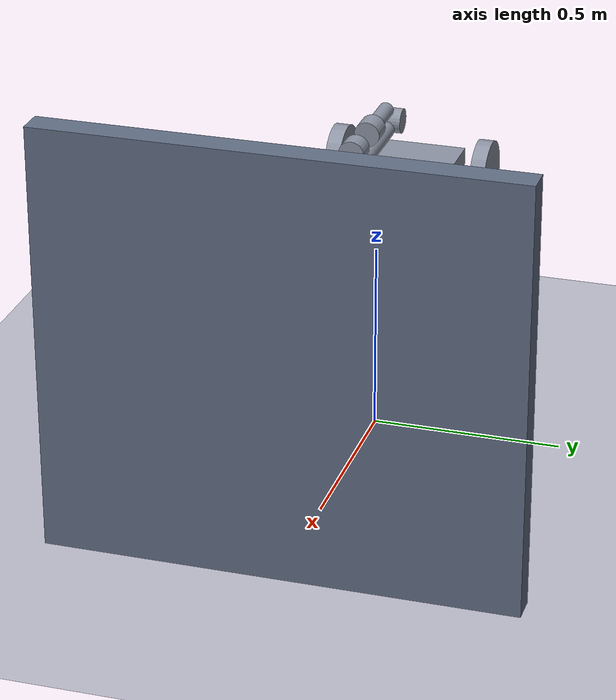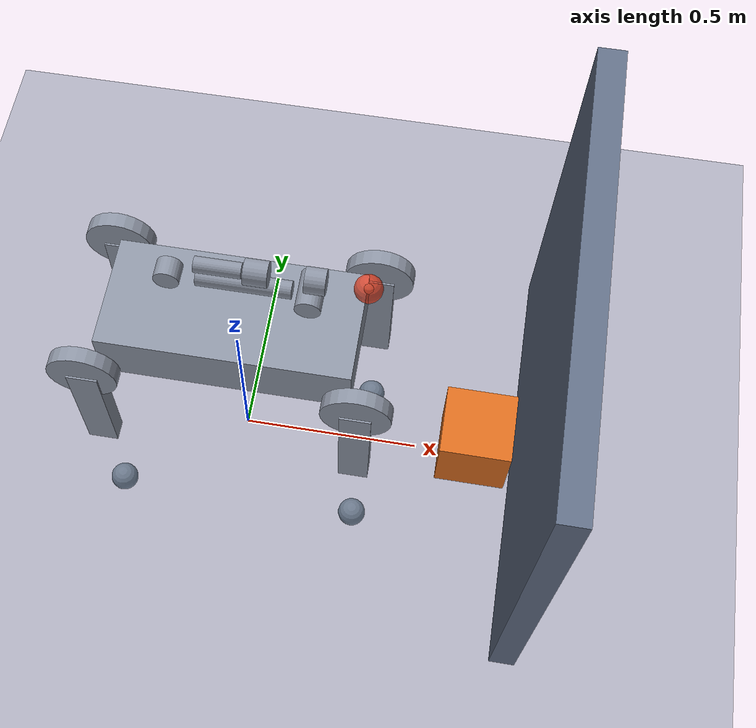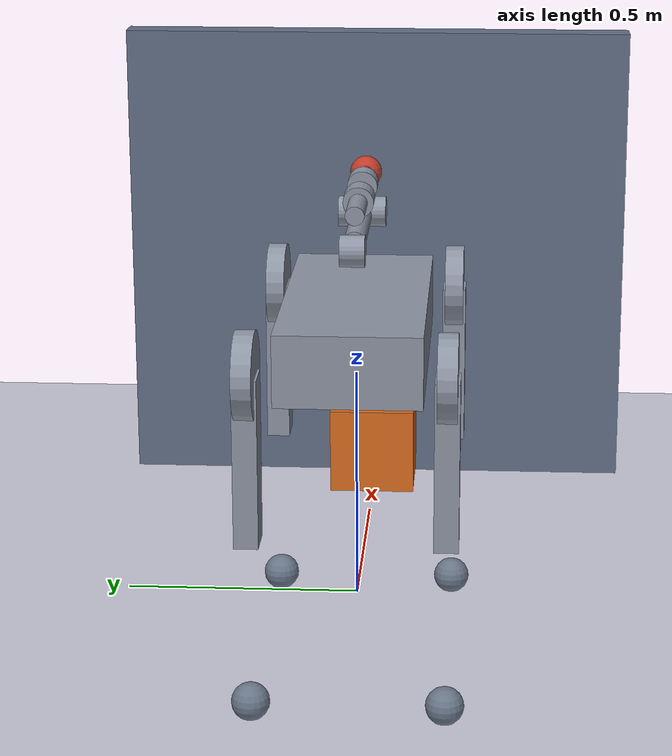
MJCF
<?xml version='1.0' encoding='utf-8'?>
<mujoco model="b1_z1_sim2sim">
  <compiler angle="radian" autolimits="true" balanceinertia="true" />
  <option timestep="0.005" gravity="0 0 -9.81" integrator="implicitfast" solver="Newton" />
  <visual>
    <headlight diffuse="0.7 0.7 0.7" ambient="0.35 0.35 0.35" specular="0.1 0.1 0.1" />
    <rgba haze="0.15 0.25 0.35 1" />
    <global azimuth="-130" elevation="-20" />
    <map znear="0.01" zfar="100" />
  </visual>
  <default>
    <joint damping="0" armature="0" frictionloss="0" />
    <geom margin="0.001" />
  </default>
  <asset>
    <texture type="skybox" builtin="gradient" rgb1="0.3 0.5 0.7" rgb2="0.02 0.02 0.03" width="512" height="3072" />
    <texture type="2d" name="groundplane_texture" builtin="checker" mark="edge" rgb1="0.2 0.3 0.4" rgb2="0.1 0.2 0.3" markrgb="0.8 0.8 0.8" width="300" height="300" />
    <material name="groundplane_material" texture="groundplane_texture" texuniform="true" texrepeat="5 5" reflectance="0.2" />
  </asset>
  <worldbody>
    <light pos="0 0 3" dir="0 0 -1" directional="true" diffuse="0.8 0.8 0.8" />
    <geom name="floor" type="plane" size="8 8 0.1" material="groundplane_material" friction="0.9 0.02 0.01" condim="3" />
    <geom name="contact_wall" type="box" pos="0.82 0 0.55" size="0.035 0.60 0.55" rgba="0.38 0.43 0.52 1" friction="0.8 0.02 0.01" />
    <body name="manipulation_block" pos="0.67 0 0.12">
      <freejoint name="manipulation_block_free" />
      <geom name="manipulation_block_geom" type="box" size="0.10 0.10 0.10" mass="1.0" rgba="0.85 0.42 0.12 1" friction="0.8 0.02 0.01" />
    </body>
    <body name="base" pos="0 0 0.6">
      <freejoint name="base_free" />
      <site name="imu" size="0.01" />
      <body name="trunk">
        <inertial pos="0.008987 0.002243 0.003013" mass="25" fullinertia="0.183142146 0.756327752 0.783777558 -0.001379002 -0.027956055 0.000193774" />
        <geom name="trunk_collision_0" rgba="0.55 0.58 0.64 1" friction="0.8 0.02 0.01" condim="3" type="box" size="0.3235 0.15 0.075" />
        <body name="imu_link">
          <inertial pos="0 0 0" mass="0.001" fullinertia="0.0001 0.000001 0.0001 0 0 0" />
          <geom name="imu_link_collision_0" rgba="0.55 0.58 0.64 1" friction="0.8 0.02 0.01" condim="3" type="box" size="0.0005 0.0005 0.0005" />
        </body>
        <body name="FR_hip" pos="0.3455 -0.072 0">
          <joint name="FR_hip_joint" type="hinge" axis="1 0 0" range="-0.75 0.75" actuatorfrcrange="-140 140" damping="0" frictionloss="0" />
          <inertial pos="-0.020298 -0.009758 0.000109" mass="2.1" fullinertia="0.00406608 0.008775259 0.006060348 0.000288071 -4.371e-06 -1.811e-06" />
          <geom name="FR_hip_collision_0" rgba="0.55 0.58 0.64 1" friction="0.8 0.02 0.01" condim="3" type="cylinder" size="0.09 0.02" pos="0 -0.12675 0" euler="1.57079632679 0 0" />
          <body name="FR_thigh" pos="0 -0.12675 0">
            <joint name="FR_thigh_joint" type="hinge" axis="0 1 0" range="-1.0 3.5" actuatorfrcrange="-140 140" damping="0" frictionloss="0" />
            <inertial pos="-0.000235 0.028704 -0.054169" mass="3.934" fullinertia="0.044459086 0.046023457 0.008696078 -0.000128738 -0.002343913 -0.006032996" />
            <geom name="FR_thigh_collision_0" rgba="0.55 0.58 0.64 1" friction="0.8 0.02 0.01" condim="3" type="box" size="0.175 0.025 0.04" pos="0 0 -0.175" euler="0 1.57079632679 0" />
            <body name="FR_calf" pos="0 0 -0.35">
              <joint name="FR_calf_joint" type="hinge" axis="0 1 0" range="-2.6 -0.6" actuatorfrcrange="-210 210" damping="0" frictionloss="0" />
              <inertial pos="0.005237 0.0 -0.202805" mass="0.857" fullinertia="0.015011003 0.015159462 0.000375749 5.2e-08 0.000250042 4.61e-07" />
              <body name="FR_foot" pos="0 0 -0.35">
                <inertial pos="0 0 0" mass="0.05" fullinertia="3.84e-05 3.84e-05 3.84e-05 0.0 0.0 0.0" />
                <geom name="FR_foot_collision_0" rgba="0.55 0.58 0.64 1" friction="0.8 0.02 0.01" condim="3" type="sphere" size="0.04" />
              </body>
            </body>
          </body>
        </body>
        <body name="FL_hip" pos="0.3455 0.072 0">
          <joint name="FL_hip_joint" type="hinge" axis="1 0 0" range="-0.75 0.75" actuatorfrcrange="-140 140" damping="0" frictionloss="0" />
          <inertial pos="-0.020298 0.009758 0.000109" mass="2.1" fullinertia="0.00406608 0.008775259 0.006060348 -0.000288071 -4.371e-06 1.811e-06" />
          <geom name="FL_hip_collision_0" rgba="0.55 0.58 0.64 1" friction="0.8 0.02 0.01" condim="3" type="cylinder" size="0.09 0.02" pos="0 0.12675 0" euler="1.57079632679 0 0" />
          <body name="FL_thigh" pos="0 0.12675 0">
            <joint name="FL_thigh_joint" type="hinge" axis="0 1 0" range="-1.0 3.5" actuatorfrcrange="-140 140" damping="0" frictionloss="0" />
            <inertial pos="-0.000235 -0.028704 -0.054169" mass="3.934" fullinertia="0.044459086 0.046023457 0.008696078 0.000128738 -0.002343913 0.006032996" />
            <geom name="FL_thigh_collision_0" rgba="0.55 0.58 0.64 1" friction="0.8 0.02 0.01" condim="3" type="box" size="0.175 0.025 0.04" pos="0 0 -0.175" euler="0 1.57079632679 0" />
            <body name="FL_calf" pos="0 0 -0.35">
              <joint name="FL_calf_joint" type="hinge" axis="0 1 0" range="-2.6 -0.6" actuatorfrcrange="-210 210" damping="0" frictionloss="0" />
              <inertial pos="0.005237 0.0 -0.202805" mass="0.857" fullinertia="0.015011003 0.015159462 0.000375749 5.2e-08 0.000250042 4.61e-07" />
              <body name="FL_foot" pos="0 0 -0.35">
                <inertial pos="0 0 0" mass="0.05" fullinertia="3.84e-05 3.84e-05 3.84e-05 0.0 0.0 0.0" />
                <geom name="FL_foot_collision_0" rgba="0.55 0.58 0.64 1" friction="0.8 0.02 0.01" condim="3" type="sphere" size="0.04" />
              </body>
            </body>
          </body>
        </body>
        <body name="RR_hip" pos="-0.3455 -0.072 0">
          <joint name="RR_hip_joint" type="hinge" axis="1 0 0" range="-0.75 0.75" actuatorfrcrange="-140 140" damping="0" frictionloss="0" />
          <inertial pos="0.020298 -0.009758 0.000109" mass="2.1" fullinertia="0.00406608 0.008775259 0.006060348 -0.000288071 4.371e-06 -1.811e-06" />
          <geom name="RR_hip_collision_0" rgba="0.55 0.58 0.64 1" friction="0.8 0.02 0.01" condim="3" type="cylinder" size="0.09 0.02" pos="0 -0.12675 0" euler="1.57079632679 0 0" />
          <body name="RR_thigh" pos="0 -0.12675 0">
            <joint name="RR_thigh_joint" type="hinge" axis="0 1 0" range="-1.0 3.5" actuatorfrcrange="-140 140" damping="0" frictionloss="0" />
            <inertial pos="-0.000235 0.028704 -0.054169" mass="3.934" fullinertia="0.044459086 0.046023457 0.008696078 -0.000128738 -0.002343913 -0.006032996" />
            <geom name="RR_thigh_collision_0" rgba="0.55 0.58 0.64 1" friction="0.8 0.02 0.01" condim="3" type="box" size="0.175 0.025 0.04" pos="0 0 -0.175" euler="0 1.5707963267948966 0" />
            <body name="RR_calf" pos="0 0 -0.35">
              <joint name="RR_calf_joint" type="hinge" axis="0 1 0" range="-2.6 -0.6" actuatorfrcrange="-210 210" damping="0" frictionloss="0" />
              <inertial pos="0.005237 0.0 -0.202805" mass="0.857" fullinertia="0.015011003 0.015159462 0.000375749 5.2e-08 0.000250042 4.61e-07" />
              <body name="RR_foot" pos="0 0 -0.35">
                <inertial pos="0 0 0" mass="0.05" fullinertia="3.84e-05 3.84e-05 3.84e-05 0.0 0.0 0.0" />
                <geom name="RR_foot_collision_0" rgba="0.55 0.58 0.64 1" friction="0.8 0.02 0.01" condim="3" type="sphere" size="0.04" />
              </body>
            </body>
          </body>
        </body>
        <body name="RL_hip" pos="-0.3455 0.072 0">
          <joint name="RL_hip_joint" type="hinge" axis="1 0 0" range="-0.75 0.75" actuatorfrcrange="-140 140" damping="0" frictionloss="0" />
          <inertial pos="0.020298 0.009758 0.000109" mass="2.1" fullinertia="0.00406608 0.008775259 0.006060348 0.000288071 4.371e-06 1.811e-06" />
          <geom name="RL_hip_collision_0" rgba="0.55 0.58 0.64 1" friction="0.8 0.02 0.01" condim="3" type="cylinder" size="0.09 0.02" pos="0 0.12675 0" euler="1.57079632679 0 0" />
          <body name="RL_thigh" pos="0 0.12675 0">
            <joint name="RL_thigh_joint" type="hinge" axis="0 1 0" range="-1.0 3.5" actuatorfrcrange="-140 140" damping="0" frictionloss="0" />
            <inertial pos="-0.000235 -0.028704 -0.054169" mass="3.934" fullinertia="0.044459086 0.046023457 0.008696078 0.000128738 -0.002343913 0.006032996" />
            <geom name="RL_thigh_collision_0" rgba="0.55 0.58 0.64 1" friction="0.8 0.02 0.01" condim="3" type="box" size="0.175 0.025 0.04" pos="0 0 -0.175" euler="0 1.57079632679 0" />
            <body name="RL_calf" pos="0 0 -0.35">
              <joint name="RL_calf_joint" type="hinge" axis="0 1 0" range="-2.6 -0.6" actuatorfrcrange="-210 210" damping="0" frictionloss="0" />
              <inertial pos="0.005237 0.0 -0.202805" mass="0.857" fullinertia="0.015011003 0.015159462 0.000375749 5.2e-08 0.000250042 4.61e-07" />
              <body name="RL_foot" pos="0 0 -0.35">
                <inertial pos="0 0 0" mass="0.05" fullinertia="3.84e-05 3.84e-05 3.84e-05 0.0 0.0 0.0" />
                <geom name="RL_foot_collision_0" rgba="0.55 0.58 0.64 1" friction="0.8 0.02 0.01" condim="3" type="sphere" size="0.04" />
              </body>
            </body>
          </body>
        </body>
      </body>
      <body name="link00" pos="0.20 0 0.1">
        <inertial pos="-0.00334984 -0.00013615 0.02495843" mass="0.47247481" fullinertia="0.00037937 0.00041521 0.00053066 0.00000035 0.00001037 0.00000099" />
        <body name="link01" pos="0 0 0.0585">
          <joint name="joint1" type="hinge" axis="0 0 1" range="-2.618 2.618" actuatorfrcrange="-30 30" damping="0.0" frictionloss="0.0" />
          <inertial pos="0.00000247 -0.00025198 0.02317169" mass="0.67332551" fullinertia="0.00128328 0.00071931 0.00083936 0.00000006 0.00000040 -0.00000050" />
          <body name="link02" pos="0 0 0.045">
            <joint name="joint2" type="hinge" axis="0 1 0" range="0.0 3.14" actuatorfrcrange="-60 60" damping="0.0" frictionloss="0.0" />
            <inertial pos="-0.11012601 0.00240029 0.00158266" mass="1.19132258" fullinertia="0.00102138 0.02429457 0.02466114 -0.00062358 -0.00000513 0.00000210" />
            <geom name="link02_collision_0" rgba="0.55 0.58 0.64 1" friction="0.8 0.02 0.01" condim="3" type="cylinder" size="0.0325 0.051" euler="1.57 0 0" />
            <geom name="link02_collision_1" rgba="0.55 0.58 0.64 1" friction="0.8 0.02 0.01" condim="3" type="cylinder" size="0.0225 0.1175" pos="-0.1625 0 0" euler="0 1.57 0" />
            <geom name="link02_collision_2" rgba="0.55 0.58 0.64 1" friction="0.8 0.02 0.01" condim="3" type="cylinder" size="0.0325 0.0255" pos="-0.35 0 0" euler="1.57 0 0" />
            <body name="link03" pos="-0.35 0 0">
              <joint name="joint3" type="hinge" axis="0 1 0" range="-4.78 0.0" actuatorfrcrange="-30 30" damping="0.0" frictionloss="0.0" />
              <inertial pos="0.10609208 -0.00541815 0.03476383" mass="0.83940874" fullinertia="0.00108061 0.00954238 0.00886621 0.00008669 0.00208102 0.00001332" />
              <geom name="link03_collision_0" rgba="0.55 0.58 0.64 1" friction="0.8 0.02 0.01" condim="3" type="cylinder" size="0.02 0.058" pos="0.128 0 0.055" euler="0 1.57 0" />
              <geom name="link03_collision_1" rgba="0.55 0.58 0.64 1" friction="0.8 0.02 0.01" condim="3" type="cylinder" size="0.0325 0.0295" pos="0.2205 0 0.055" euler="0 1.57 0" />
              <body name="link04" pos="0.218 0 0.057">
                <joint name="joint4" type="hinge" axis="0 1 0" range="-1.744 1.57" actuatorfrcrange="-30 30" damping="0.0" frictionloss="0.0" />
                <inertial pos="0.04366681 0.00364738 -0.00170192" mass="0.56404563" fullinertia="0.00031576 0.00092996 0.00097912 -0.00008130 -0.00004091 0.00000596" />
                <body name="link05" pos="0.07 0.0 0.0">
                  <joint name="joint5" type="hinge" axis="0 0 1" range="-1.727 1.727" actuatorfrcrange="-30 30" damping="0.0" frictionloss="0.0" />
                  <inertial pos="0.03121533 0.0 0.00646316" mass="0.38938492" fullinertia="0.00017605 0.00055896 0.00053860 -0.00000040 -0.00005689 0.00000013" />
                  <body name="link06" pos="0.0492 0.0 0.0">
                    <joint name="joint6" type="hinge" axis="1 0 0" range="-2.79 2.79" actuatorfrcrange="-30 30" damping="0.0" frictionloss="0.0" />
                    <inertial pos="0.02415690 -0.00017355 -0.00143876" mass="0.28875807" fullinertia="0.00018328 0.00014750 0.00014680 -0.00000122 -0.00000054 -0.00000008" />
                    <geom name="link06_collision_0" rgba="0.55 0.58 0.64 1" friction="0.8 0.02 0.01" condim="3" type="cylinder" size="0.0325 0.0255" pos="0.0255 0 0" euler="0 1.57 0" />
                    <body name="gripperStator" pos="0.051 0.0 0.0">
                      <inertial pos="0.04764427 -0.00035819 -0.00249162" mass="0.52603655" fullinertia="0.00038683 0.00068614 0.00066293 0.00000359 -0.00007662 -0.00000209" />
                      <geom name="end_effector_contact" type="sphere" pos="0.10 0 0" size="0.035" density="0" rgba="0.95 0.25 0.12 0.75" />
                      <site name="end_effector_site" pos="0.10 0 0" size="0.012" />
                      <body name="gripperMover" pos="0.049 0.0 0">
                        <joint name="jointGripper" type="hinge" axis="0 1 0" range="-1.57 0.0" actuatorfrcrange="-30 30" damping="0.0" frictionloss="0.0" />
                        <inertial pos="0.01320633 0.00476708 0.00380534" mass="0.27621302" fullinertia="0.00017716 0.00026787 0.00035728 -0.00001683 0.00001786 -0.00000262" />
                      </body>
                    </body>
                  </body>
                </body>
              </body>
            </body>
          </body>
        </body>
      </body>
    </body>
  </worldbody>
  <actuator>
    <motor name="FR_hip_joint_motor" joint="FR_hip_joint" ctrlrange="-140 140" />
    <motor name="FR_thigh_joint_motor" joint="FR_thigh_joint" ctrlrange="-140 140" />
    <motor name="FR_calf_joint_motor" joint="FR_calf_joint" ctrlrange="-210 210" />
    <motor name="FL_hip_joint_motor" joint="FL_hip_joint" ctrlrange="-140 140" />
    <motor name="FL_thigh_joint_motor" joint="FL_thigh_joint" ctrlrange="-140 140" />
    <motor name="FL_calf_joint_motor" joint="FL_calf_joint" ctrlrange="-210 210" />
    <motor name="RR_hip_joint_motor" joint="RR_hip_joint" ctrlrange="-140 140" />
    <motor name="RR_thigh_joint_motor" joint="RR_thigh_joint" ctrlrange="-140 140" />
    <motor name="RR_calf_joint_motor" joint="RR_calf_joint" ctrlrange="-210 210" />
    <motor name="RL_hip_joint_motor" joint="RL_hip_joint" ctrlrange="-140 140" />
    <motor name="RL_thigh_joint_motor" joint="RL_thigh_joint" ctrlrange="-140 140" />
    <motor name="RL_calf_joint_motor" joint="RL_calf_joint" ctrlrange="-210 210" />
    <motor name="joint1_motor" joint="joint1" ctrlrange="-30 30" />
    <motor name="joint2_motor" joint="joint2" ctrlrange="-60 60" />
    <motor name="joint3_motor" joint="joint3" ctrlrange="-30 30" />
    <motor name="joint4_motor" joint="joint4" ctrlrange="-30 30" />
    <motor name="joint5_motor" joint="joint5" ctrlrange="-30 30" />
    <motor name="joint6_motor" joint="joint6" ctrlrange="-30 30" />
    <motor name="jointGripper_motor" joint="jointGripper" ctrlrange="-30 30" />
  </actuator>
  <sensor>
    <framequat name="imu_quat" objtype="site" objname="imu" />
    <gyro name="imu_gyro" site="imu" />
    <accelerometer name="imu_acc" site="imu" />
  </sensor>
</mujoco>
